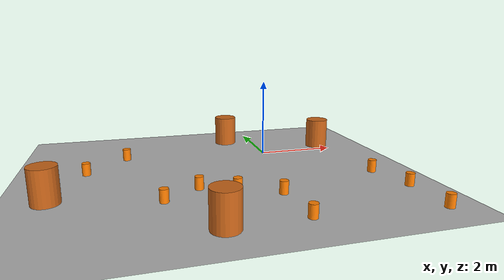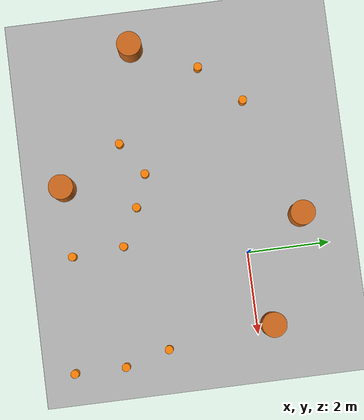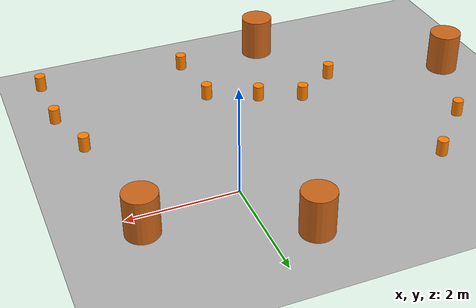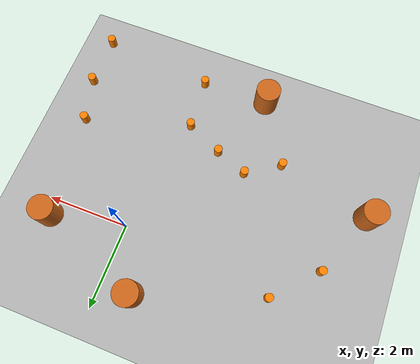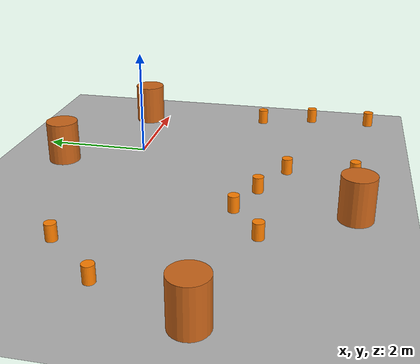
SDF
<?xml version="1.0" ?>
<sdf version="1.8">
  <world name="default">

    <!-- ── Required gz-sim system plugins (missing from the original
         Gazebo Classic export  without these, physics/sensors/spawn
         don't function at all in Harmonic) ──────────────────────── -->
    <plugin filename="gz-sim-physics-system" name="gz::sim::systems::Physics">
    </plugin>
    <plugin filename="gz-sim-sensors-system" name="gz::sim::systems::Sensors">
      <render_engine>ogre2</render_engine>
    </plugin>
    <plugin filename="gz-sim-contact-system" name="gz::sim::systems::Contact">
    </plugin>
    <plugin filename="gz-sim-user-commands-system" name="gz::sim::systems::UserCommands">
    </plugin>
    <plugin filename="gz-sim-scene-broadcaster-system" name="gz::sim::systems::SceneBroadcaster">
    </plugin>

    <physics name="1ms" type="dart">
      <max_step_size>0.001</max_step_size>
      <real_time_factor>1.0</real_time_factor>
    </physics>

    <gravity>0 0 -9.8</gravity>

    <scene>
      <ambient>0.4 0.4 0.4 1</ambient>
      <background>0.7 0.7 0.7 1</background>
      <shadows>true</shadows>
    </scene>

    <light name="sun" type="directional">
      <cast_shadows>true</cast_shadows>
      <pose>0 0 10 0 0 0</pose>
      <diffuse>0.8 0.8 0.8 1</diffuse>
      <specular>0.2 0.2 0.2 1</specular>
      <attenuation>
        <range>1000</range>
        <constant>0.9</constant>
        <linear>0.01</linear>
        <quadratic>0.001</quadratic>
      </attenuation>
      <direction>-0.5 0.1 -0.9</direction>
    </light>

    <model name="ground_plane">
      <static>true</static>
      <link name="link">
        <collision name="collision">
          <geometry>
            <plane>
              <normal>0 0 1</normal>
              <size>100 100</size>
            </plane>
          </geometry>
          <surface>
            <friction>
              <ode>
                <mu>100</mu>
                <mu2>50</mu2>
              </ode>
            </friction>
          </surface>
        </collision>
        <visual name="visual">
          <geometry>
            <plane>
              <normal>0 0 1</normal>
              <size>100 100</size>
            </plane>
          </geometry>
          <!-- FIXED: inline color instead of Classic's script-based
               material, which doesn't reliably render in Harmonic -->
          <material>
            <ambient>0.7 0.7 0.7 1</ambient>
            <diffuse>0.7 0.7 0.7 1</diffuse>
          </material>
        </visual>
      </link>
    </model>

    <!-- ── Obstacles: primitives replacing the Classic-only barrel/cone
         meshes, at the same poses as the original file ──────────── -->

    <model name="barrel_1">
      <static>true</static>
      <pose>-0.756237 1.39226 0.4 0 0 0</pose>
      <link name="link">
        <collision name="collision">
          <geometry><cylinder><radius>0.3</radius><length>0.8</length></cylinder></geometry>
        </collision>
        <visual name="visual">
          <geometry><cylinder><radius>0.3</radius><length>0.8</length></cylinder></geometry>
          <material><ambient>0.8 0.4 0.1 1</ambient><diffuse>0.8 0.4 0.1 1</diffuse></material>
        </visual>
      </link>
    </model>

    <model name="barrel_2">
      <static>true</static>
      <pose>1.80022 0.377178 0.4 0 0 0</pose>
      <link name="link">
        <collision name="collision">
          <geometry><cylinder><radius>0.3</radius><length>0.8</length></cylinder></geometry>
        </collision>
        <visual name="visual">
          <geometry><cylinder><radius>0.3</radius><length>0.8</length></cylinder></geometry>
          <material><ambient>0.8 0.4 0.1 1</ambient><diffuse>0.8 0.4 0.1 1</diffuse></material>
        </visual>
      </link>
    </model>

    <model name="barrel_3">
      <static>true</static>
      <pose>-5.3108 -2.23708 0.4 0 0 0</pose>
      <link name="link">
        <collision name="collision">
          <geometry><cylinder><radius>0.3</radius><length>0.8</length></cylinder></geometry>
        </collision>
        <visual name="visual">
          <geometry><cylinder><radius>0.3</radius><length>0.8</length></cylinder></geometry>
          <material><ambient>0.8 0.4 0.1 1</ambient><diffuse>0.8 0.4 0.1 1</diffuse></material>
        </visual>
      </link>
    </model>

    <model name="barrel_4">
      <static>true</static>
      <pose>-2.07692 -4.26198 0.4 0 0 0</pose>
      <link name="link">
        <collision name="collision">
          <geometry><cylinder><radius>0.3</radius><length>0.8</length></cylinder></geometry>
        </collision>
        <visual name="visual">
          <geometry><cylinder><radius>0.3</radius><length>0.8</length></cylinder></geometry>
          <material><ambient>0.8 0.4 0.1 1</ambient><diffuse>0.8 0.4 0.1 1</diffuse></material>
        </visual>
      </link>
    </model>

    <!-- Cones as small orange cylinders (simplified from the original
         cone mesh  close enough for lidar/costmap obstacle testing) -->

    <model name="cone_1">
      <static>true</static>
      <pose>-2.19745 -2.25046 0.15 0 0 0</pose>
      <link name="link">
        <collision name="collision">
          <geometry><cylinder><radius>0.1</radius><length>0.3</length></cylinder></geometry>
        </collision>
        <visual name="visual">
          <geometry><cylinder><radius>0.1</radius><length>0.3</length></cylinder></geometry>
          <material><ambient>1.0 0.5 0.0 1</ambient><diffuse>1.0 0.5 0.0 1</diffuse></material>
        </visual>
      </link>
    </model>

    <model name="cone_2">
      <static>true</static>
      <pose>-1.40494 -2.55135 0.15 0 0 0</pose>
      <link name="link">
        <collision name="collision">
          <geometry><cylinder><radius>0.1</radius><length>0.3</length></cylinder></geometry>
        </collision>
        <visual name="visual">
          <geometry><cylinder><radius>0.1</radius><length>0.3</length></cylinder></geometry>
          <material><ambient>1.0 0.5 0.0 1</ambient><diffuse>1.0 0.5 0.0 1</diffuse></material>
        </visual>
      </link>
    </model>

    <model name="cone_3">
      <static>true</static>
      <pose>-0.501986 -2.9745 0.15 0 0 0</pose>
      <link name="link">
        <collision name="collision">
          <geometry><cylinder><radius>0.1</radius><length>0.3</length></cylinder></geometry>
        </collision>
        <visual name="visual">
          <geometry><cylinder><radius>0.1</radius><length>0.3</length></cylinder></geometry>
          <material><ambient>1.0 0.5 0.0 1</ambient><diffuse>1.0 0.5 0.0 1</diffuse></material>
        </visual>
      </link>
    </model>

    <model name="cone_4">
      <static>true</static>
      <pose>2.09724 -2.18232 0.15 0 0 0</pose>
      <link name="link">
        <collision name="collision">
          <geometry><cylinder><radius>0.1</radius><length>0.3</length></cylinder></geometry>
        </collision>
        <visual name="visual">
          <geometry><cylinder><radius>0.1</radius><length>0.3</length></cylinder></geometry>
          <material><ambient>1.0 0.5 0.0 1</ambient><diffuse>1.0 0.5 0.0 1</diffuse></material>
        </visual>
      </link>
    </model>

    <model name="cone_5">
      <static>true</static>
      <pose>-3.69879 0.345038 0.15 0 0 0</pose>
      <link name="link">
        <collision name="collision">
          <geometry><cylinder><radius>0.1</radius><length>0.3</length></cylinder></geometry>
        </collision>
        <visual name="visual">
          <geometry><cylinder><radius>0.1</radius><length>0.3</length></cylinder></geometry>
          <material><ambient>1.0 0.5 0.0 1</ambient><diffuse>1.0 0.5 0.0 1</diffuse></material>
        </visual>
      </link>
    </model>

    <model name="cone_6">
      <static>true</static>
      <pose>-0.406438 -4.23374 0.15 0 0 0</pose>
      <link name="link">
        <collision name="collision">
          <geometry><cylinder><radius>0.1</radius><length>0.3</length></cylinder></geometry>
        </collision>
        <visual name="visual">
          <geometry><cylinder><radius>0.1</radius><length>0.3</length></cylinder></geometry>
          <material><ambient>1.0 0.5 0.0 1</ambient><diffuse>1.0 0.5 0.0 1</diffuse></material>
        </visual>
      </link>
    </model>

    <model name="cone_7">
      <static>true</static>
      <pose>2.38815 -3.2576 0.15 0 0 0</pose>
      <link name="link">
        <collision name="collision">
          <geometry><cylinder><radius>0.1</radius><length>0.3</length></cylinder></geometry>
        </collision>
        <visual name="visual">
          <geometry><cylinder><radius>0.1</radius><length>0.3</length></cylinder></geometry>
          <material><ambient>1.0 0.5 0.0 1</ambient><diffuse>1.0 0.5 0.0 1</diffuse></material>
        </visual>
      </link>
    </model>

    <model name="cone_8">
      <static>true</static>
      <pose>2.39316 -4.49605 0.15 0 0 0</pose>
      <link name="link">
        <collision name="collision">
          <geometry><cylinder><radius>0.1</radius><length>0.3</length></cylinder></geometry>
        </collision>
        <visual name="visual">
          <geometry><cylinder><radius>0.1</radius><length>0.3</length></cylinder></geometry>
          <material><ambient>1.0 0.5 0.0 1</ambient><diffuse>1.0 0.5 0.0 1</diffuse></material>
        </visual>
      </link>
    </model>

    <model name="cone_9">
      <static>true</static>
      <pose>-3.00495 -2.78053 0.15 0 0 0</pose>
      <link name="link">
        <collision name="collision">
          <geometry><cylinder><radius>0.1</radius><length>0.3</length></cylinder></geometry>
        </collision>
        <visual name="visual">
          <geometry><cylinder><radius>0.1</radius><length>0.3</length></cylinder></geometry>
          <material><ambient>1.0 0.5 0.0 1</ambient><diffuse>1.0 0.5 0.0 1</diffuse></material>
        </visual>
      </link>
    </model>

    <model name="cone_10">
      <static>true</static>
      <pose>-4.64786 -0.646522 0.15 0 0 0</pose>
      <link name="link">
        <collision name="collision">
          <geometry><cylinder><radius>0.1</radius><length>0.3</length></cylinder></geometry>
        </collision>
        <visual name="visual">
          <geometry><cylinder><radius>0.1</radius><length>0.3</length></cylinder></geometry>
          <material><ambient>1.0 0.5 0.0 1</ambient><diffuse>1.0 0.5 0.0 1</diffuse></material>
        </visual>
      </link>
    </model>

  </world>
</sdf>
